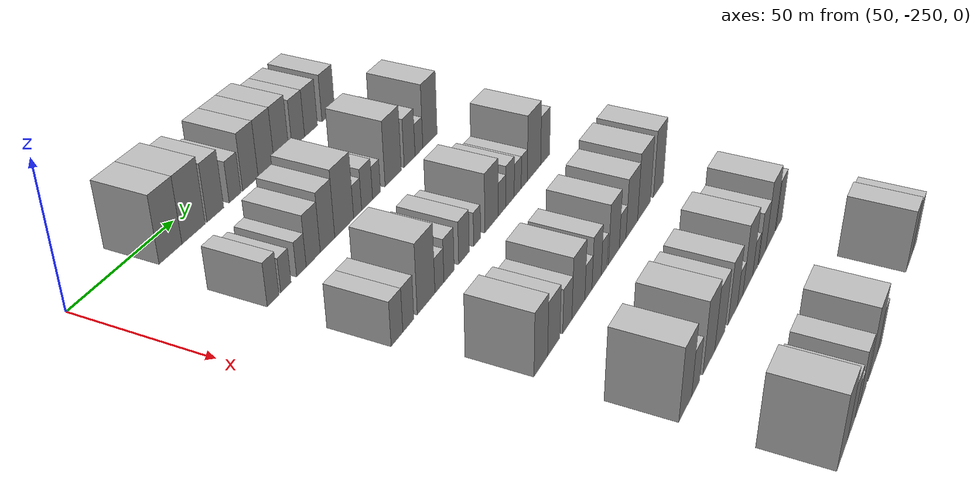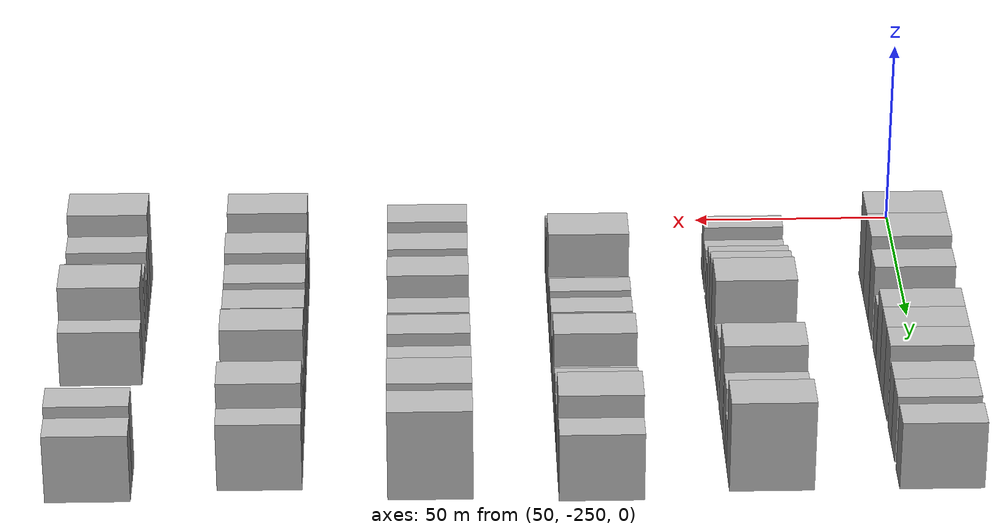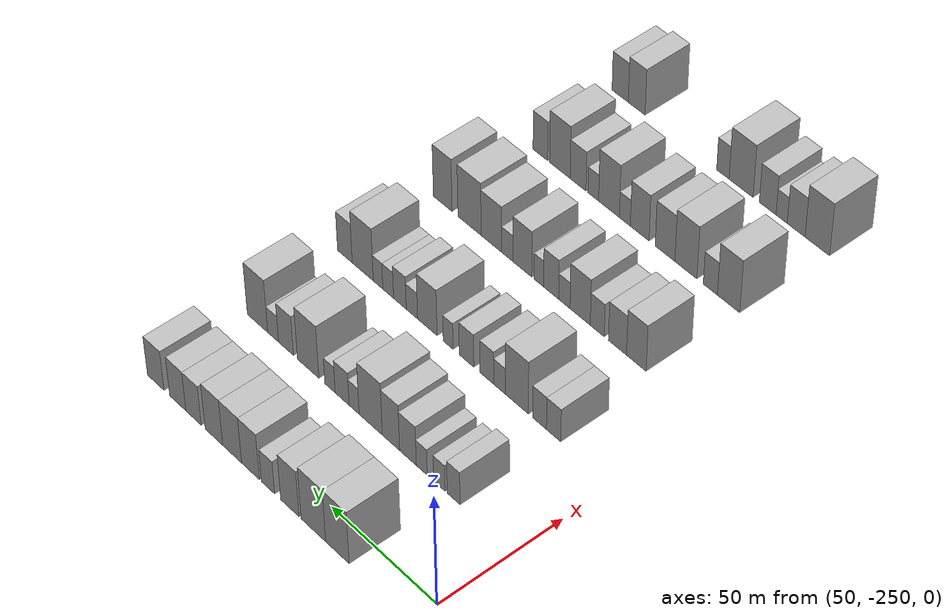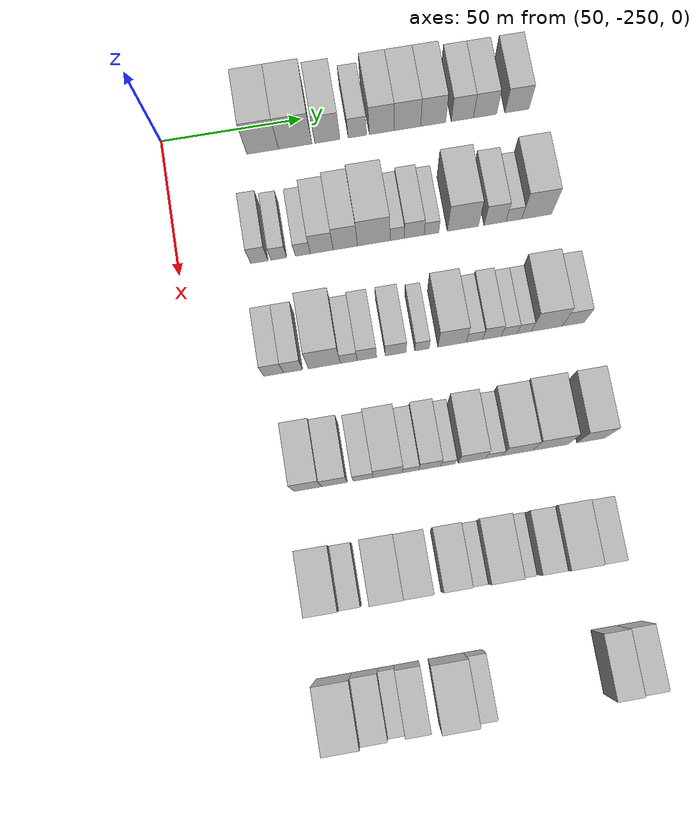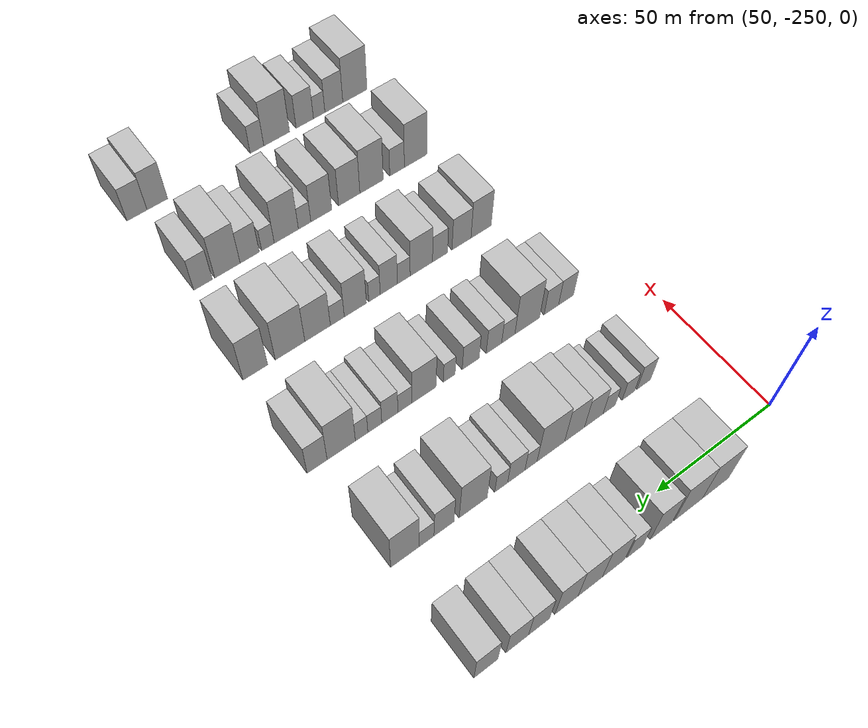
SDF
<sdf version="1.6">
 <world name="default">
  <model name="building_44">
   <static>1</static>
   <pose>50.0000 -215.1509 0 0.000000 0.000000 0.000000</pose>
   <link name="link">
    <pose>0 0 12.00 0 0 0</pose>
    <collision name="collision"><geometry><box><size>20.0000 11.2883 24.0000</size></box></geometry></collision>
    <visual name="visual">
     <cast_shadows>0</cast_shadows>
     <geometry><box><size>20.0000 11.2883 24.0000</size></box></geometry>
     <material>
      <script>
       <uri>model://HANNAS_wall/materials/scripts</uri>
       <uri>model://HANNAS_wall/materials/textures</uri>
       <name>vrc/HANNAS_wall</name>
      </script>
     </material>
    </visual>
   </link>
  </model>
  <model name="building_45">
   <static>1</static>
   <pose>50.0000 -203.5456 0 0.000000 0.000000 0.000000</pose>
   <link name="link">
    <pose>0 0 12.00 0 0 0</pose>
    <collision name="collision"><geometry><box><size>20.0000 11.9224 24.0000</size></box></geometry></collision>
    <visual name="visual">
     <cast_shadows>0</cast_shadows>
     <geometry><box><size>20.0000 11.9224 24.0000</size></box></geometry>
     <material>
      <script>
       <uri>model://HANNAS_wall/materials/scripts</uri>
       <uri>model://HANNAS_wall/materials/textures</uri>
       <name>vrc/HANNAS_wall</name>
      </script>
     </material>
    </visual>
   </link>
  </model>
  <model name="building_46">
   <static>1</static>
   <pose>50.0000 -192.0829 0 0.000000 0.000000 0.000000</pose>
   <link name="link">
    <pose>0 0 10.50 0 0 0</pose>
    <collision name="collision"><geometry><box><size>20.0000 9.0031 21.0000</size></box></geometry></collision>
    <visual name="visual">
     <cast_shadows>0</cast_shadows>
     <geometry><box><size>20.0000 9.0031 21.0000</size></box></geometry>
     <material>
      <script>
       <uri>model://HANNAS_wall/materials/scripts</uri>
       <uri>model://HANNAS_wall/materials/textures</uri>
       <name>vrc/HANNAS_wall</name>
      </script>
     </material>
    </visual>
   </link>
  </model>
  <model name="building_47">
   <static>1</static>
   <pose>50.0000 -181.3081 0 0.000000 0.000000 0.000000</pose>
   <link name="link">
    <pose>0 0 7.50 0 0 0</pose>
    <collision name="collision"><geometry><box><size>20.0000 6.5465 15.0000</size></box></geometry></collision>
    <visual name="visual">
     <cast_shadows>0</cast_shadows>
     <geometry><box><size>20.0000 6.5465 15.0000</size></box></geometry>
     <material>
      <script>
       <uri>model://HANNAS_wall/materials/scripts</uri>
       <uri>model://HANNAS_wall/materials/textures</uri>
       <name>vrc/HANNAS_wall</name>
      </script>
     </material>
    </visual>
   </link>
  </model>
  <model name="building_48">
   <static>1</static>
   <pose>50.0000 -172.5631 0 0.000000 0.000000 0.000000</pose>
   <link name="link">
    <pose>0 0 10.50 0 0 0</pose>
    <collision name="collision"><geometry><box><size>20.0000 8.9435 21.0000</size></box></geometry></collision>
    <visual name="visual">
     <cast_shadows>0</cast_shadows>
     <geometry><box><size>20.0000 8.9435 21.0000</size></box></geometry>
     <material>
      <script>
       <uri>model://HANNAS_wall/materials/scripts</uri>
       <uri>model://HANNAS_wall/materials/textures</uri>
       <name>vrc/HANNAS_wall</name>
      </script>
     </material>
    </visual>
   </link>
  </model>
  <model name="building_49">
   <static>1</static>
   <pose>50.0000 -163.3328 0 0.000000 0.000000 0.000000</pose>
   <link name="link">
    <pose>0 0 10.50 0 0 0</pose>
    <collision name="collision"><geometry><box><size>20.0000 9.5170 21.0000</size></box></geometry></collision>
    <visual name="visual">
     <cast_shadows>0</cast_shadows>
     <geometry><box><size>20.0000 9.5170 21.0000</size></box></geometry>
     <material>
      <script>
       <uri>model://HANNAS_wall/materials/scripts</uri>
       <uri>model://HANNAS_wall/materials/textures</uri>
       <name>vrc/HANNAS_wall</name>
      </script>
     </material>
    </visual>
   </link>
  </model>
  <model name="building_50">
   <static>1</static>
   <pose>50.0000 -154.0710 0 0.000000 0.000000 0.000000</pose>
   <link name="link">
    <pose>0 0 10.50 0 0 0</pose>
    <collision name="collision"><geometry><box><size>20.0000 9.0066 21.0000</size></box></geometry></collision>
    <visual name="visual">
     <cast_shadows>0</cast_shadows>
     <geometry><box><size>20.0000 9.0066 21.0000</size></box></geometry>
     <material>
      <script>
       <uri>model://HANNAS_wall/materials/scripts</uri>
       <uri>model://HANNAS_wall/materials/textures</uri>
       <name>vrc/HANNAS_wall</name>
      </script>
     </material>
    </visual>
   </link>
  </model>
  <model name="building_51">
   <static>1</static>
   <pose>50.0000 -143.5659 0 0.000000 0.000000 0.000000</pose>
   <link name="link">
    <pose>0 0 9.00 0 0 0</pose>
    <collision name="collision"><geometry><box><size>20.0000 8.0035 18.0000</size></box></geometry></collision>
    <visual name="visual">
     <cast_shadows>0</cast_shadows>
     <geometry><box><size>20.0000 8.0035 18.0000</size></box></geometry>
     <material>
      <script>
       <uri>model://HANNAS_wall/materials/scripts</uri>
       <uri>model://HANNAS_wall/materials/textures</uri>
       <name>vrc/HANNAS_wall</name>
      </script>
     </material>
    </visual>
   </link>
  </model>
  <model name="building_52">
   <static>1</static>
   <pose>50.0000 -135.3710 0 0.000000 0.000000 0.000000</pose>
   <link name="link">
    <pose>0 0 9.00 0 0 0</pose>
    <collision name="collision"><geometry><box><size>20.0000 8.3865 18.0000</size></box></geometry></collision>
    <visual name="visual">
     <cast_shadows>0</cast_shadows>
     <geometry><box><size>20.0000 8.3865 18.0000</size></box></geometry>
     <material>
      <script>
       <uri>model://HANNAS_wall/materials/scripts</uri>
       <uri>model://HANNAS_wall/materials/textures</uri>
       <name>vrc/HANNAS_wall</name>
      </script>
     </material>
    </visual>
   </link>
  </model>
  <model name="building_53">
   <static>1</static>
   <pose>50.0000 -123.8219 0 0.000000 0.000000 0.000000</pose>
   <link name="link">
    <pose>0 0 9.00 0 0 0</pose>
    <collision name="collision"><geometry><box><size>20.0000 8.7116 18.0000</size></box></geometry></collision>
    <visual name="visual">
     <cast_shadows>0</cast_shadows>
     <geometry><box><size>20.0000 8.7116 18.0000</size></box></geometry>
     <material>
      <script>
       <uri>model://HANNAS_wall/materials/scripts</uri>
       <uri>model://HANNAS_wall/materials/textures</uri>
       <name>vrc/HANNAS_wall</name>
      </script>
     </material>
    </visual>
   </link>
  </model>
  <model name="building_183">
   <static>1</static>
   <pose>90.0000 -222.1263 0 0.000000 0.000000 0.000000</pose>
   <link name="link">
    <pose>0 0 7.50 0 0 0</pose>
    <collision name="collision"><geometry><box><size>20.0000 6.0730 15.0000</size></box></geometry></collision>
    <visual name="visual">
     <cast_shadows>0</cast_shadows>
     <geometry><box><size>20.0000 6.0730 15.0000</size></box></geometry>
     <material>
      <script>
       <uri>model://HANNAS_wall/materials/scripts</uri>
       <uri>model://HANNAS_wall/materials/textures</uri>
       <name>vrc/HANNAS_wall</name>
      </script>
     </material>
    </visual>
   </link>
  </model>
  <model name="building_184">
   <static>1</static>
   <pose>90.0000 -215.3403 0 0.000000 0.000000 0.000000</pose>
   <link name="link">
    <pose>0 0 6.00 0 0 0</pose>
    <collision name="collision"><geometry><box><size>20.0000 5.4990 12.0000</size></box></geometry></collision>
    <visual name="visual">
     <cast_shadows>0</cast_shadows>
     <geometry><box><size>20.0000 5.4990 12.0000</size></box></geometry>
     <material>
      <script>
       <uri>model://HANNAS_wall/materials/scripts</uri>
       <uri>model://HANNAS_wall/materials/textures</uri>
       <name>vrc/HANNAS_wall</name>
      </script>
     </material>
    </visual>
   </link>
  </model>
  <model name="building_185">
   <static>1</static>
   <pose>90.0000 -206.9477 0 0.000000 0.000000 0.000000</pose>
   <link name="link">
    <pose>0 0 6.00 0 0 0</pose>
    <collision name="collision"><geometry><box><size>20.0000 5.2861 12.0000</size></box></geometry></collision>
    <visual name="visual">
     <cast_shadows>0</cast_shadows>
     <geometry><box><size>20.0000 5.2861 12.0000</size></box></geometry>
     <material>
      <script>
       <uri>model://HANNAS_wall/materials/scripts</uri>
       <uri>model://HANNAS_wall/materials/textures</uri>
       <name>vrc/HANNAS_wall</name>
      </script>
     </material>
    </visual>
   </link>
  </model>
  <model name="building_186">
   <static>1</static>
   <pose>90.0000 -200.3060 0 0.000000 0.000000 0.000000</pose>
   <link name="link">
    <pose>0 0 9.00 0 0 0</pose>
    <collision name="collision"><geometry><box><size>20.0000 7.9973 18.0000</size></box></geometry></collision>
    <visual name="visual">
     <cast_shadows>0</cast_shadows>
     <geometry><box><size>20.0000 7.9973 18.0000</size></box></geometry>
     <material>
      <script>
       <uri>model://HANNAS_wall/materials/scripts</uri>
       <uri>model://HANNAS_wall/materials/textures</uri>
       <name>vrc/HANNAS_wall</name>
      </script>
     </material>
    </visual>
   </link>
  </model>
  <model name="building_187">
   <static>1</static>
   <pose>90.0000 -192.0844 0 0.000000 0.000000 0.000000</pose>
   <link name="link">
    <pose>0 0 10.50 0 0 0</pose>
    <collision name="collision"><geometry><box><size>20.0000 8.4459 21.0000</size></box></geometry></collision>
    <visual name="visual">
     <cast_shadows>0</cast_shadows>
     <geometry><box><size>20.0000 8.4459 21.0000</size></box></geometry>
     <material>
      <script>
       <uri>model://HANNAS_wall/materials/scripts</uri>
       <uri>model://HANNAS_wall/materials/textures</uri>
       <name>vrc/HANNAS_wall</name>
      </script>
     </material>
    </visual>
   </link>
  </model>
  <model name="building_188">
   <static>1</static>
   <pose>90.0000 -182.1443 0 0.000000 0.000000 0.000000</pose>
   <link name="link">
    <pose>0 0 12.00 0 0 0</pose>
    <collision name="collision"><geometry><box><size>20.0000 11.4341 24.0000</size></box></geometry></collision>
    <visual name="visual">
     <cast_shadows>0</cast_shadows>
     <geometry><box><size>20.0000 11.4341 24.0000</size></box></geometry>
     <material>
      <script>
       <uri>model://HANNAS_wall/materials/scripts</uri>
       <uri>model://HANNAS_wall/materials/textures</uri>
       <name>vrc/HANNAS_wall</name>
      </script>
     </material>
    </visual>
   </link>
  </model>
  <model name="building_189">
   <static>1</static>
   <pose>90.0000 -173.9284 0 0.000000 0.000000 0.000000</pose>
   <link name="link">
    <pose>0 0 6.00 0 0 0</pose>
    <collision name="collision"><geometry><box><size>20.0000 4.9978 12.0000</size></box></geometry></collision>
    <visual name="visual">
     <cast_shadows>0</cast_shadows>
     <geometry><box><size>20.0000 4.9978 12.0000</size></box></geometry>
     <material>
      <script>
       <uri>model://HANNAS_wall/materials/scripts</uri>
       <uri>model://HANNAS_wall/materials/textures</uri>
       <name>vrc/HANNAS_wall</name>
      </script>
     </material>
    </visual>
   </link>
  </model>
  <model name="building_190">
   <static>1</static>
   <pose>90.0000 -167.9443 0 0.000000 0.000000 0.000000</pose>
   <link name="link">
    <pose>0 0 7.50 0 0 0</pose>
    <collision name="collision"><geometry><box><size>20.0000 6.9704 15.0000</size></box></geometry></collision>
    <visual name="visual">
     <cast_shadows>0</cast_shadows>
     <geometry><box><size>20.0000 6.9704 15.0000</size></box></geometry>
     <material>
      <script>
       <uri>model://HANNAS_wall/materials/scripts</uri>
       <uri>model://HANNAS_wall/materials/textures</uri>
       <name>vrc/HANNAS_wall</name>
      </script>
     </material>
    </visual>
   </link>
  </model>
  <model name="building_191">
   <static>1</static>
   <pose>90.0000 -161.8737 0 0.000000 0.000000 0.000000</pose>
   <link name="link">
    <pose>0 0 6.00 0 0 0</pose>
    <collision name="collision"><geometry><box><size>20.0000 5.1708 12.0000</size></box></geometry></collision>
    <visual name="visual">
     <cast_shadows>0</cast_shadows>
     <geometry><box><size>20.0000 5.1708 12.0000</size></box></geometry>
     <material>
      <script>
       <uri>model://HANNAS_wall/materials/scripts</uri>
       <uri>model://HANNAS_wall/materials/textures</uri>
       <name>vrc/HANNAS_wall</name>
      </script>
     </material>
    </visual>
   </link>
  </model>
  <model name="building_192">
   <static>1</static>
   <pose>90.0000 -150.8051 0 0.000000 0.000000 0.000000</pose>
   <link name="link">
    <pose>0 0 12.00 0 0 0</pose>
    <collision name="collision"><geometry><box><size>20.0000 10.9663 24.0000</size></box></geometry></collision>
    <visual name="visual">
     <cast_shadows>0</cast_shadows>
     <geometry><box><size>20.0000 10.9663 24.0000</size></box></geometry>
     <material>
      <script>
       <uri>model://HANNAS_wall/materials/scripts</uri>
       <uri>model://HANNAS_wall/materials/textures</uri>
       <name>vrc/HANNAS_wall</name>
      </script>
     </material>
    </visual>
   </link>
  </model>
  <model name="building_193">
   <static>1</static>
   <pose>90.0000 -139.4650 0 0.000000 0.000000 0.000000</pose>
   <link name="link">
    <pose>0 0 9.00 0 0 0</pose>
    <collision name="collision"><geometry><box><size>20.0000 7.7139 18.0000</size></box></geometry></collision>
    <visual name="visual">
     <cast_shadows>0</cast_shadows>
     <geometry><box><size>20.0000 7.7139 18.0000</size></box></geometry>
     <material>
      <script>
       <uri>model://HANNAS_wall/materials/scripts</uri>
       <uri>model://HANNAS_wall/materials/textures</uri>
       <name>vrc/HANNAS_wall</name>
      </script>
     </material>
    </visual>
   </link>
  </model>
  <model name="building_194">
   <static>1</static>
   <pose>90.0000 -132.8114 0 0.000000 0.000000 0.000000</pose>
   <link name="link">
    <pose>0 0 6.00 0 0 0</pose>
    <collision name="collision"><geometry><box><size>20.0000 5.5934 12.0000</size></box></geometry></collision>
    <visual name="visual">
     <cast_shadows>0</cast_shadows>
     <geometry><box><size>20.0000 5.5934 12.0000</size></box></geometry>
     <material>
      <script>
       <uri>model://HANNAS_wall/materials/scripts</uri>
       <uri>model://HANNAS_wall/materials/textures</uri>
       <name>vrc/HANNAS_wall</name>
      </script>
     </material>
    </visual>
   </link>
  </model>
  <model name="building_195">
   <static>1</static>
   <pose>90.0000 -124.7039 0 0.000000 0.000000 0.000000</pose>
   <link name="link">
    <pose>0 0 12.00 0 0 0</pose>
    <collision name="collision"><geometry><box><size>20.0000 10.6215 24.0000</size></box></geometry></collision>
    <visual name="visual">
     <cast_shadows>0</cast_shadows>
     <geometry><box><size>20.0000 10.6215 24.0000</size></box></geometry>
     <material>
      <script>
       <uri>model://HANNAS_wall/materials/scripts</uri>
       <uri>model://HANNAS_wall/materials/textures</uri>
       <name>vrc/HANNAS_wall</name>
      </script>
     </material>
    </visual>
   </link>
  </model>
  <model name="building_319">
   <static>1</static>
   <pose>130.0000 -223.0644 0 0.000000 0.000000 0.000000</pose>
   <link name="link">
    <pose>0 0 7.50 0 0 0</pose>
    <collision name="collision"><geometry><box><size>20.0000 6.7323 15.0000</size></box></geometry></collision>
    <visual name="visual">
     <cast_shadows>0</cast_shadows>
     <geometry><box><size>20.0000 6.7323 15.0000</size></box></geometry>
     <material>
      <script>
       <uri>model://HANNAS_wall/materials/scripts</uri>
       <uri>model://HANNAS_wall/materials/textures</uri>
       <name>vrc/HANNAS_wall</name>
      </script>
     </material>
    </visual>
   </link>
  </model>
  <model name="building_320">
   <static>1</static>
   <pose>130.0000 -216.4493 0 0.000000 0.000000 0.000000</pose>
   <link name="link">
    <pose>0 0 7.50 0 0 0</pose>
    <collision name="collision"><geometry><box><size>20.0000 6.4980 15.0000</size></box></geometry></collision>
    <visual name="visual">
     <cast_shadows>0</cast_shadows>
     <geometry><box><size>20.0000 6.4980 15.0000</size></box></geometry>
     <material>
      <script>
       <uri>model://HANNAS_wall/materials/scripts</uri>
       <uri>model://HANNAS_wall/materials/textures</uri>
       <name>vrc/HANNAS_wall</name>
      </script>
     </material>
    </visual>
   </link>
  </model>
  <model name="building_321">
   <static>1</static>
   <pose>130.0000 -205.7435 0 0.000000 0.000000 0.000000</pose>
   <link name="link">
    <pose>0 0 12.00 0 0 0</pose>
    <collision name="collision"><geometry><box><size>20.0000 10.9136 24.0000</size></box></geometry></collision>
    <visual name="visual">
     <cast_shadows>0</cast_shadows>
     <geometry><box><size>20.0000 10.9136 24.0000</size></box></geometry>
     <material>
      <script>
       <uri>model://HANNAS_wall/materials/scripts</uri>
       <uri>model://HANNAS_wall/materials/textures</uri>
       <name>vrc/HANNAS_wall</name>
      </script>
     </material>
    </visual>
   </link>
  </model>
  <model name="building_322">
   <static>1</static>
   <pose>130.0000 -197.4213 0 0.000000 0.000000 0.000000</pose>
   <link name="link">
    <pose>0 0 6.00 0 0 0</pose>
    <collision name="collision"><geometry><box><size>20.0000 5.7308 12.0000</size></box></geometry></collision>
    <visual name="visual">
     <cast_shadows>0</cast_shadows>
     <geometry><box><size>20.0000 5.7308 12.0000</size></box></geometry>
     <material>
      <script>
       <uri>model://HANNAS_wall/materials/scripts</uri>
       <uri>model://HANNAS_wall/materials/textures</uri>
       <name>vrc/HANNAS_wall</name>
      </script>
     </material>
    </visual>
   </link>
  </model>
  <model name="building_323">
   <static>1</static>
   <pose>130.0000 -191.2221 0 0.000000 0.000000 0.000000</pose>
   <link name="link">
    <pose>0 0 7.50 0 0 0</pose>
    <collision name="collision"><geometry><box><size>20.0000 6.6677 15.0000</size></box></geometry></collision>
    <visual name="visual">
     <cast_shadows>0</cast_shadows>
     <geometry><box><size>20.0000 6.6677 15.0000</size></box></geometry>
     <material>
      <script>
       <uri>model://HANNAS_wall/materials/scripts</uri>
       <uri>model://HANNAS_wall/materials/textures</uri>
       <name>vrc/HANNAS_wall</name>
      </script>
     </material>
    </visual>
   </link>
  </model>
  <model name="building_324">
   <static>1</static>
   <pose>130.0000 -181.3081 0 0.000000 0.000000 0.000000</pose>
   <link name="link">
    <pose>0 0 7.50 0 0 0</pose>
    <collision name="collision"><geometry><box><size>20.0000 7.1602 15.0000</size></box></geometry></collision>
    <visual name="visual">
     <cast_shadows>0</cast_shadows>
     <geometry><box><size>20.0000 7.1602 15.0000</size></box></geometry>
     <material>
      <script>
       <uri>model://HANNAS_wall/materials/scripts</uri>
       <uri>model://HANNAS_wall/materials/textures</uri>
       <name>vrc/HANNAS_wall</name>
      </script>
     </material>
    </visual>
   </link>
  </model>
  <model name="building_325">
   <static>1</static>
   <pose>130.0000 -172.2784 0 0.000000 0.000000 0.000000</pose>
   <link name="link">
    <pose>0 0 6.00 0 0 0</pose>
    <collision name="collision"><geometry><box><size>20.0000 4.8992 12.0000</size></box></geometry></collision>
    <visual name="visual">
     <cast_shadows>0</cast_shadows>
     <geometry><box><size>20.0000 4.8992 12.0000</size></box></geometry>
     <material>
      <script>
       <uri>model://HANNAS_wall/materials/scripts</uri>
       <uri>model://HANNAS_wall/materials/textures</uri>
       <name>vrc/HANNAS_wall</name>
      </script>
     </material>
    </visual>
   </link>
  </model>
  <model name="building_326">
   <static>1</static>
   <pose>130.0000 -161.9482 0 0.000000 0.000000 0.000000</pose>
   <link name="link">
    <pose>0 0 10.50 0 0 0</pose>
    <collision name="collision"><geometry><box><size>20.0000 9.7613 21.0000</size></box></geometry></collision>
    <visual name="visual">
     <cast_shadows>0</cast_shadows>
     <geometry><box><size>20.0000 9.7613 21.0000</size></box></geometry>
     <material>
      <script>
       <uri>model://HANNAS_wall/materials/scripts</uri>
       <uri>model://HANNAS_wall/materials/textures</uri>
       <name>vrc/HANNAS_wall</name>
      </script>
     </material>
    </visual>
   </link>
  </model>
  <model name="building_327">
   <static>1</static>
   <pose>130.0000 -154.2139 0 0.000000 0.000000 0.000000</pose>
   <link name="link">
    <pose>0 0 6.00 0 0 0</pose>
    <collision name="collision"><geometry><box><size>20.0000 5.7072 12.0000</size></box></geometry></collision>
    <visual name="visual">
     <cast_shadows>0</cast_shadows>
     <geometry><box><size>20.0000 5.7072 12.0000</size></box></geometry>
     <material>
      <script>
       <uri>model://HANNAS_wall/materials/scripts</uri>
       <uri>model://HANNAS_wall/materials/textures</uri>
       <name>vrc/HANNAS_wall</name>
      </script>
     </material>
    </visual>
   </link>
  </model>
  <model name="building_328">
   <static>1</static>
   <pose>130.0000 -148.1591 0 0.000000 0.000000 0.000000</pose>
   <link name="link">
    <pose>0 0 7.50 0 0 0</pose>
    <collision name="collision"><geometry><box><size>20.0000 6.4026 15.0000</size></box></geometry></collision>
    <visual name="visual">
     <cast_shadows>0</cast_shadows>
     <geometry><box><size>20.0000 6.4026 15.0000</size></box></geometry>
     <material>
      <script>
       <uri>model://HANNAS_wall/materials/scripts</uri>
       <uri>model://HANNAS_wall/materials/textures</uri>
       <name>vrc/HANNAS_wall</name>
      </script>
     </material>
    </visual>
   </link>
  </model>
  <model name="building_329">
   <static>1</static>
   <pose>130.0000 -142.2230 0 0.000000 0.000000 0.000000</pose>
   <link name="link">
    <pose>0 0 6.00 0 0 0</pose>
    <collision name="collision"><geometry><box><size>20.0000 5.4696 12.0000</size></box></geometry></collision>
    <visual name="visual">
     <cast_shadows>0</cast_shadows>
     <geometry><box><size>20.0000 5.4696 12.0000</size></box></geometry>
     <material>
      <script>
       <uri>model://HANNAS_wall/materials/scripts</uri>
       <uri>model://HANNAS_wall/materials/textures</uri>
       <name>vrc/HANNAS_wall</name>
      </script>
     </material>
    </visual>
   </link>
  </model>
  <model name="building_330">
   <static>1</static>
   <pose>130.0000 -137.0396 0 0.000000 0.000000 0.000000</pose>
   <link name="link">
    <pose>0 0 6.00 0 0 0</pose>
    <collision name="collision"><geometry><box><size>20.0000 4.8972 12.0000</size></box></geometry></collision>
    <visual name="visual">
     <cast_shadows>0</cast_shadows>
     <geometry><box><size>20.0000 4.8972 12.0000</size></box></geometry>
     <material>
      <script>
       <uri>model://HANNAS_wall/materials/scripts</uri>
       <uri>model://HANNAS_wall/materials/textures</uri>
       <name>vrc/HANNAS_wall</name>
      </script>
     </material>
    </visual>
   </link>
  </model>
  <model name="building_331">
   <static>1</static>
   <pose>130.0000 -129.1559 0 0.000000 0.000000 0.000000</pose>
   <link name="link">
    <pose>0 0 12.00 0 0 0</pose>
    <collision name="collision"><geometry><box><size>20.0000 10.8701 24.0000</size></box></geometry></collision>
    <visual name="visual">
     <cast_shadows>0</cast_shadows>
     <geometry><box><size>20.0000 10.8701 24.0000</size></box></geometry>
     <material>
      <script>
       <uri>model://HANNAS_wall/materials/scripts</uri>
       <uri>model://HANNAS_wall/materials/textures</uri>
       <name>vrc/HANNAS_wall</name>
      </script>
     </material>
    </visual>
   </link>
  </model>
  <model name="building_332">
   <static>1</static>
   <pose>130.0000 -119.9130 0 0.000000 0.000000 0.000000</pose>
   <link name="link">
    <pose>0 0 9.00 0 0 0</pose>
    <collision name="collision"><geometry><box><size>20.0000 7.6157 18.0000</size></box></geometry></collision>
    <visual name="visual">
     <cast_shadows>0</cast_shadows>
     <geometry><box><size>20.0000 7.6157 18.0000</size></box></geometry>
     <material>
      <script>
       <uri>model://HANNAS_wall/materials/scripts</uri>
       <uri>model://HANNAS_wall/materials/textures</uri>
       <name>vrc/HANNAS_wall</name>
      </script>
     </material>
    </visual>
   </link>
  </model>
  <model name="building_457">
   <static>1</static>
   <pose>170.0000 -217.5515 0 0.000000 0.000000 0.000000</pose>
   <link name="link">
    <pose>0 0 10.50 0 0 0</pose>
    <collision name="collision"><geometry><box><size>20.0000 9.1840 21.0000</size></box></geometry></collision>
    <visual name="visual">
     <cast_shadows>0</cast_shadows>
     <geometry><box><size>20.0000 9.1840 21.0000</size></box></geometry>
     <material>
      <script>
       <uri>model://HANNAS_wall/materials/scripts</uri>
       <uri>model://HANNAS_wall/materials/textures</uri>
       <name>vrc/HANNAS_wall</name>
      </script>
     </material>
    </visual>
   </link>
  </model>
  <model name="building_458">
   <static>1</static>
   <pose>170.0000 -208.6763 0 0.000000 0.000000 0.000000</pose>
   <link name="link">
    <pose>0 0 9.00 0 0 0</pose>
    <collision name="collision"><geometry><box><size>20.0000 8.5664 18.0000</size></box></geometry></collision>
    <visual name="visual">
     <cast_shadows>0</cast_shadows>
     <geometry><box><size>20.0000 8.5664 18.0000</size></box></geometry>
     <material>
      <script>
       <uri>model://HANNAS_wall/materials/scripts</uri>
       <uri>model://HANNAS_wall/materials/textures</uri>
       <name>vrc/HANNAS_wall</name>
      </script>
     </material>
    </visual>
   </link>
  </model>
  <model name="building_459">
   <static>1</static>
   <pose>170.0000 -199.0518 0 0.000000 0.000000 0.000000</pose>
   <link name="link">
    <pose>0 0 7.50 0 0 0</pose>
    <collision name="collision"><geometry><box><size>20.0000 6.6826 15.0000</size></box></geometry></collision>
    <visual name="visual">
     <cast_shadows>0</cast_shadows>
     <geometry><box><size>20.0000 6.6826 15.0000</size></box></geometry>
     <material>
      <script>
       <uri>model://HANNAS_wall/materials/scripts</uri>
       <uri>model://HANNAS_wall/materials/textures</uri>
       <name>vrc/HANNAS_wall</name>
      </script>
     </material>
    </visual>
   </link>
  </model>
  <model name="building_460">
   <static>1</static>
   <pose>170.0000 -190.8267 0 0.000000 0.000000 0.000000</pose>
   <link name="link">
    <pose>0 0 10.50 0 0 0</pose>
    <collision name="collision"><geometry><box><size>20.0000 9.7676 21.0000</size></box></geometry></collision>
    <visual name="visual">
     <cast_shadows>0</cast_shadows>
     <geometry><box><size>20.0000 9.7676 21.0000</size></box></geometry>
     <material>
      <script>
       <uri>model://HANNAS_wall/materials/scripts</uri>
       <uri>model://HANNAS_wall/materials/textures</uri>
       <name>vrc/HANNAS_wall</name>
      </script>
     </material>
    </visual>
   </link>
  </model>
  <model name="building_461">
   <static>1</static>
   <pose>170.0000 -183.1782 0 0.000000 0.000000 0.000000</pose>
   <link name="link">
    <pose>0 0 6.00 0 0 0</pose>
    <collision name="collision"><geometry><box><size>20.0000 5.5294 12.0000</size></box></geometry></collision>
    <visual name="visual">
     <cast_shadows>0</cast_shadows>
     <geometry><box><size>20.0000 5.5294 12.0000</size></box></geometry>
     <material>
      <script>
       <uri>model://HANNAS_wall/materials/scripts</uri>
       <uri>model://HANNAS_wall/materials/textures</uri>
       <name>vrc/HANNAS_wall</name>
      </script>
     </material>
    </visual>
   </link>
  </model>
  <model name="building_462">
   <static>1</static>
   <pose>170.0000 -176.7500 0 0.000000 0.000000 0.000000</pose>
   <link name="link">
    <pose>0 0 9.00 0 0 0</pose>
    <collision name="collision"><geometry><box><size>20.0000 7.3270 18.0000</size></box></geometry></collision>
    <visual name="visual">
     <cast_shadows>0</cast_shadows>
     <geometry><box><size>20.0000 7.3270 18.0000</size></box></geometry>
     <material>
      <script>
       <uri>model://HANNAS_wall/materials/scripts</uri>
       <uri>model://HANNAS_wall/materials/textures</uri>
       <name>vrc/HANNAS_wall</name>
      </script>
     </material>
    </visual>
   </link>
  </model>
  <model name="building_463">
   <static>1</static>
   <pose>170.0000 -170.6645 0 0.000000 0.000000 0.000000</pose>
   <link name="link">
    <pose>0 0 6.00 0 0 0</pose>
    <collision name="collision"><geometry><box><size>20.0000 4.8441 12.0000</size></box></geometry></collision>
    <visual name="visual">
     <cast_shadows>0</cast_shadows>
     <geometry><box><size>20.0000 4.8441 12.0000</size></box></geometry>
     <material>
      <script>
       <uri>model://HANNAS_wall/materials/scripts</uri>
       <uri>model://HANNAS_wall/materials/textures</uri>
       <name>vrc/HANNAS_wall</name>
      </script>
     </material>
    </visual>
   </link>
  </model>
  <model name="building_464">
   <static>1</static>
   <pose>170.0000 -162.6236 0 0.000000 0.000000 0.000000</pose>
   <link name="link">
    <pose>0 0 10.50 0 0 0</pose>
    <collision name="collision"><geometry><box><size>20.0000 9.2377 21.0000</size></box></geometry></collision>
    <visual name="visual">
     <cast_shadows>0</cast_shadows>
     <geometry><box><size>20.0000 9.2377 21.0000</size></box></geometry>
     <material>
      <script>
       <uri>model://HANNAS_wall/materials/scripts</uri>
       <uri>model://HANNAS_wall/materials/textures</uri>
       <name>vrc/HANNAS_wall</name>
      </script>
     </material>
    </visual>
   </link>
  </model>
  <model name="building_465">
   <static>1</static>
   <pose>170.0000 -155.1461 0 0.000000 0.000000 0.000000</pose>
   <link name="link">
    <pose>0 0 6.00 0 0 0</pose>
    <collision name="collision"><geometry><box><size>20.0000 5.7173 12.0000</size></box></geometry></collision>
    <visual name="visual">
     <cast_shadows>0</cast_shadows>
     <geometry><box><size>20.0000 5.7173 12.0000</size></box></geometry>
     <material>
      <script>
       <uri>model://HANNAS_wall/materials/scripts</uri>
       <uri>model://HANNAS_wall/materials/textures</uri>
       <name>vrc/HANNAS_wall</name>
      </script>
     </material>
    </visual>
   </link>
  </model>
  <model name="building_466">
   <static>1</static>
   <pose>170.0000 -147.0947 0 0.000000 0.000000 0.000000</pose>
   <link name="link">
    <pose>0 0 10.50 0 0 0</pose>
    <collision name="collision"><geometry><box><size>20.0000 10.3855 21.0000</size></box></geometry></collision>
    <visual name="visual">
     <cast_shadows>0</cast_shadows>
     <geometry><box><size>20.0000 10.3855 21.0000</size></box></geometry>
     <material>
      <script>
       <uri>model://HANNAS_wall/materials/scripts</uri>
       <uri>model://HANNAS_wall/materials/textures</uri>
       <name>vrc/HANNAS_wall</name>
      </script>
     </material>
    </visual>
   </link>
  </model>
  <model name="building_467">
   <static>1</static>
   <pose>170.0000 -135.9889 0 0.000000 0.000000 0.000000</pose>
   <link name="link">
    <pose>0 0 12.00 0 0 0</pose>
    <collision name="collision"><geometry><box><size>20.0000 11.8263 24.0000</size></box></geometry></collision>
    <visual name="visual">
     <cast_shadows>0</cast_shadows>
     <geometry><box><size>20.0000 11.8263 24.0000</size></box></geometry>
     <material>
      <script>
       <uri>model://HANNAS_wall/materials/scripts</uri>
       <uri>model://HANNAS_wall/materials/textures</uri>
       <name>vrc/HANNAS_wall</name>
      </script>
     </material>
    </visual>
   </link>
  </model>
  <model name="building_468">
   <static>1</static>
   <pose>170.0000 -122.2620 0 0.000000 0.000000 0.000000</pose>
   <link name="link">
    <pose>0 0 12.00 0 0 0</pose>
    <collision name="collision"><geometry><box><size>20.0000 9.6274 24.0000</size></box></geometry></collision>
    <visual name="visual">
     <cast_shadows>0</cast_shadows>
     <geometry><box><size>20.0000 9.6274 24.0000</size></box></geometry>
     <material>
      <script>
       <uri>model://HANNAS_wall/materials/scripts</uri>
       <uri>model://HANNAS_wall/materials/textures</uri>
       <name>vrc/HANNAS_wall</name>
      </script>
     </material>
    </visual>
   </link>
  </model>
  <model name="building_590">
   <static>1</static>
   <pose>210.0000 -218.0966 0 0.000000 0.000000 0.000000</pose>
   <link name="link">
    <pose>0 0 12.00 0 0 0</pose>
    <collision name="collision"><geometry><box><size>20.0000 10.4303 24.0000</size></box></geometry></collision>
    <visual name="visual">
     <cast_shadows>0</cast_shadows>
     <geometry><box><size>20.0000 10.4303 24.0000</size></box></geometry>
     <material>
      <script>
       <uri>model://HANNAS_wall/materials/scripts</uri>
       <uri>model://HANNAS_wall/materials/textures</uri>
       <name>vrc/HANNAS_wall</name>
      </script>
     </material>
    </visual>
   </link>
  </model>
  <model name="building_591">
   <static>1</static>
   <pose>210.0000 -209.5448 0 0.000000 0.000000 0.000000</pose>
   <link name="link">
    <pose>0 0 7.50 0 0 0</pose>
    <collision name="collision"><geometry><box><size>20.0000 6.6734 15.0000</size></box></geometry></collision>
    <visual name="visual">
     <cast_shadows>0</cast_shadows>
     <geometry><box><size>20.0000 6.6734 15.0000</size></box></geometry>
     <material>
      <script>
       <uri>model://HANNAS_wall/materials/scripts</uri>
       <uri>model://HANNAS_wall/materials/textures</uri>
       <name>vrc/HANNAS_wall</name>
      </script>
     </material>
    </visual>
   </link>
  </model>
  <model name="building_592">
   <static>1</static>
   <pose>210.0000 -197.9469 0 0.000000 0.000000 0.000000</pose>
   <link name="link">
    <pose>0 0 12.00 0 0 0</pose>
    <collision name="collision"><geometry><box><size>20.0000 10.5224 24.0000</size></box></geometry></collision>
    <visual name="visual">
     <cast_shadows>0</cast_shadows>
     <geometry><box><size>20.0000 10.5224 24.0000</size></box></geometry>
     <material>
      <script>
       <uri>model://HANNAS_wall/materials/scripts</uri>
       <uri>model://HANNAS_wall/materials/textures</uri>
       <name>vrc/HANNAS_wall</name>
      </script>
     </material>
    </visual>
   </link>
  </model>
  <model name="building_593">
   <static>1</static>
   <pose>210.0000 -187.9480 0 0.000000 0.000000 0.000000</pose>
   <link name="link">
    <pose>0 0 10.50 0 0 0</pose>
    <collision name="collision"><geometry><box><size>20.0000 9.4754 21.0000</size></box></geometry></collision>
    <visual name="visual">
     <cast_shadows>0</cast_shadows>
     <geometry><box><size>20.0000 9.4754 21.0000</size></box></geometry>
     <material>
      <script>
       <uri>model://HANNAS_wall/materials/scripts</uri>
       <uri>model://HANNAS_wall/materials/textures</uri>
       <name>vrc/HANNAS_wall</name>
      </script>
     </material>
    </visual>
   </link>
  </model>
  <model name="building_594">
   <static>1</static>
   <pose>210.0000 -175.6614 0 0.000000 0.000000 0.000000</pose>
   <link name="link">
    <pose>0 0 10.50 0 0 0</pose>
    <collision name="collision"><geometry><box><size>20.0000 9.0977 21.0000</size></box></geometry></collision>
    <visual name="visual">
     <cast_shadows>0</cast_shadows>
     <geometry><box><size>20.0000 9.0977 21.0000</size></box></geometry>
     <material>
      <script>
       <uri>model://HANNAS_wall/materials/scripts</uri>
       <uri>model://HANNAS_wall/materials/textures</uri>
       <name>vrc/HANNAS_wall</name>
      </script>
     </material>
    </visual>
   </link>
  </model>
  <model name="building_595">
   <static>1</static>
   <pose>210.0000 -168.4188 0 0.000000 0.000000 0.000000</pose>
   <link name="link">
    <pose>0 0 6.00 0 0 0</pose>
    <collision name="collision"><geometry><box><size>20.0000 5.3875 12.0000</size></box></geometry></collision>
    <visual name="visual">
     <cast_shadows>0</cast_shadows>
     <geometry><box><size>20.0000 5.3875 12.0000</size></box></geometry>
     <material>
      <script>
       <uri>model://HANNAS_wall/materials/scripts</uri>
       <uri>model://HANNAS_wall/materials/textures</uri>
       <name>vrc/HANNAS_wall</name>
      </script>
     </material>
    </visual>
   </link>
  </model>
  <model name="building_596">
   <static>1</static>
   <pose>210.0000 -160.5900 0 0.000000 0.000000 0.000000</pose>
   <link name="link">
    <pose>0 0 12.00 0 0 0</pose>
    <collision name="collision"><geometry><box><size>20.0000 10.2701 24.0000</size></box></geometry></collision>
    <visual name="visual">
     <cast_shadows>0</cast_shadows>
     <geometry><box><size>20.0000 10.2701 24.0000</size></box></geometry>
     <material>
      <script>
       <uri>model://HANNAS_wall/materials/scripts</uri>
       <uri>model://HANNAS_wall/materials/textures</uri>
       <name>vrc/HANNAS_wall</name>
      </script>
     </material>
    </visual>
   </link>
  </model>
  <model name="building_597">
   <static>1</static>
   <pose>210.0000 -152.8083 0 0.000000 0.000000 0.000000</pose>
   <link name="link">
    <pose>0 0 6.00 0 0 0</pose>
    <collision name="collision"><geometry><box><size>20.0000 5.2934 12.0000</size></box></geometry></collision>
    <visual name="visual">
     <cast_shadows>0</cast_shadows>
     <geometry><box><size>20.0000 5.2934 12.0000</size></box></geometry>
     <material>
      <script>
       <uri>model://HANNAS_wall/materials/scripts</uri>
       <uri>model://HANNAS_wall/materials/textures</uri>
       <name>vrc/HANNAS_wall</name>
      </script>
     </material>
    </visual>
   </link>
  </model>
  <model name="building_598">
   <static>1</static>
   <pose>210.0000 -145.1901 0 0.000000 0.000000 0.000000</pose>
   <link name="link">
    <pose>0 0 9.00 0 0 0</pose>
    <collision name="collision"><geometry><box><size>20.0000 7.9430 18.0000</size></box></geometry></collision>
    <visual name="visual">
     <cast_shadows>0</cast_shadows>
     <geometry><box><size>20.0000 7.9430 18.0000</size></box></geometry>
     <material>
      <script>
       <uri>model://HANNAS_wall/materials/scripts</uri>
       <uri>model://HANNAS_wall/materials/textures</uri>
       <name>vrc/HANNAS_wall</name>
      </script>
     </material>
    </visual>
   </link>
  </model>
  <model name="building_599">
   <static>1</static>
   <pose>210.0000 -136.0302 0 0.000000 0.000000 0.000000</pose>
   <link name="link">
    <pose>0 0 12.00 0 0 0</pose>
    <collision name="collision"><geometry><box><size>20.0000 10.3767 24.0000</size></box></geometry></collision>
    <visual name="visual">
     <cast_shadows>0</cast_shadows>
     <geometry><box><size>20.0000 10.3767 24.0000</size></box></geometry>
     <material>
      <script>
       <uri>model://HANNAS_wall/materials/scripts</uri>
       <uri>model://HANNAS_wall/materials/textures</uri>
       <name>vrc/HANNAS_wall</name>
      </script>
     </material>
    </visual>
   </link>
  </model>
  <model name="building_600">
   <static>1</static>
   <pose>210.0000 -126.0972 0 0.000000 0.000000 0.000000</pose>
   <link name="link">
    <pose>0 0 9.00 0 0 0</pose>
    <collision name="collision"><geometry><box><size>20.0000 7.4893 18.0000</size></box></geometry></collision>
    <visual name="visual">
     <cast_shadows>0</cast_shadows>
     <geometry><box><size>20.0000 7.4893 18.0000</size></box></geometry>
     <material>
      <script>
       <uri>model://HANNAS_wall/materials/scripts</uri>
       <uri>model://HANNAS_wall/materials/textures</uri>
       <name>vrc/HANNAS_wall</name>
      </script>
     </material>
    </visual>
   </link>
  </model>
  <model name="building_736">
   <static>1</static>
   <pose>250.0000 -218.4795 0 0.000000 0.000000 0.000000</pose>
   <link name="link">
    <pose>0 0 12.00 0 0 0</pose>
    <collision name="collision"><geometry><box><size>20.0000 11.4536 24.0000</size></box></geometry></collision>
    <visual name="visual">
     <cast_shadows>0</cast_shadows>
     <geometry><box><size>20.0000 11.4536 24.0000</size></box></geometry>
     <material>
      <script>
       <uri>model://HANNAS_wall/materials/scripts</uri>
       <uri>model://HANNAS_wall/materials/textures</uri>
       <name>vrc/HANNAS_wall</name>
      </script>
     </material>
    </visual>
   </link>
  </model>
  <model name="building_737">
   <static>1</static>
   <pose>250.0000 -208.5644 0 0.000000 0.000000 0.000000</pose>
   <link name="link">
    <pose>0 0 9.00 0 0 0</pose>
    <collision name="collision"><geometry><box><size>20.0000 8.3767 18.0000</size></box></geometry></collision>
    <visual name="visual">
     <cast_shadows>0</cast_shadows>
     <geometry><box><size>20.0000 8.3767 18.0000</size></box></geometry>
     <material>
      <script>
       <uri>model://HANNAS_wall/materials/scripts</uri>
       <uri>model://HANNAS_wall/materials/textures</uri>
       <name>vrc/HANNAS_wall</name>
      </script>
     </material>
    </visual>
   </link>
  </model>
  <model name="building_738">
   <static>1</static>
   <pose>250.0000 -201.7191 0 0.000000 0.000000 0.000000</pose>
   <link name="link">
    <pose>0 0 6.00 0 0 0</pose>
    <collision name="collision"><geometry><box><size>20.0000 5.3139 12.0000</size></box></geometry></collision>
    <visual name="visual">
     <cast_shadows>0</cast_shadows>
     <geometry><box><size>20.0000 5.3139 12.0000</size></box></geometry>
     <material>
      <script>
       <uri>model://HANNAS_wall/materials/scripts</uri>
       <uri>model://HANNAS_wall/materials/textures</uri>
       <name>vrc/HANNAS_wall</name>
      </script>
     </material>
    </visual>
   </link>
  </model>
  <model name="building_739">
   <static>1</static>
   <pose>250.0000 -195.0857 0 0.000000 0.000000 0.000000</pose>
   <link name="link">
    <pose>0 0 9.00 0 0 0</pose>
    <collision name="collision"><geometry><box><size>20.0000 7.9527 18.0000</size></box></geometry></collision>
    <visual name="visual">
     <cast_shadows>0</cast_shadows>
     <geometry><box><size>20.0000 7.9527 18.0000</size></box></geometry>
     <material>
      <script>
       <uri>model://HANNAS_wall/materials/scripts</uri>
       <uri>model://HANNAS_wall/materials/textures</uri>
       <name>vrc/HANNAS_wall</name>
      </script>
     </material>
    </visual>
   </link>
  </model>
  <model name="building_740">
   <static>1</static>
   <pose>250.0000 -182.3275 0 0.000000 0.000000 0.000000</pose>
   <link name="link">
    <pose>0 0 12.00 0 0 0</pose>
    <collision name="collision"><geometry><box><size>20.0000 11.5637 24.0000</size></box></geometry></collision>
    <visual name="visual">
     <cast_shadows>0</cast_shadows>
     <geometry><box><size>20.0000 11.5637 24.0000</size></box></geometry>
     <material>
      <script>
       <uri>model://HANNAS_wall/materials/scripts</uri>
       <uri>model://HANNAS_wall/materials/textures</uri>
       <name>vrc/HANNAS_wall</name>
      </script>
     </material>
    </visual>
   </link>
  </model>
  <model name="building_741">
   <static>1</static>
   <pose>250.0000 -173.5265 0 0.000000 0.000000 0.000000</pose>
   <link name="link">
    <pose>0 0 7.50 0 0 0</pose>
    <collision name="collision"><geometry><box><size>20.0000 6.0384 15.0000</size></box></geometry></collision>
    <visual name="visual">
     <cast_shadows>0</cast_shadows>
     <geometry><box><size>20.0000 6.0384 15.0000</size></box></geometry>
     <material>
      <script>
       <uri>model://HANNAS_wall/materials/scripts</uri>
       <uri>model://HANNAS_wall/materials/textures</uri>
       <name>vrc/HANNAS_wall</name>
      </script>
     </material>
    </visual>
   </link>
  </model>
  <model name="building_742">
   <static>1</static>
   <pose>250.0000 -130.6956 0 0.000000 0.000000 0.000000</pose>
   <link name="link">
    <pose>0 0 10.50 0 0 0</pose>
    <collision name="collision"><geometry><box><size>20.0000 8.5411 21.0000</size></box></geometry></collision>
    <visual name="visual">
     <cast_shadows>0</cast_shadows>
     <geometry><box><size>20.0000 8.5411 21.0000</size></box></geometry>
     <material>
      <script>
       <uri>model://HANNAS_wall/materials/scripts</uri>
       <uri>model://HANNAS_wall/materials/textures</uri>
       <name>vrc/HANNAS_wall</name>
      </script>
     </material>
    </visual>
   </link>
  </model>
  <model name="building_743">
   <static>1</static>
   <pose>250.0000 -122.2903 0 0.000000 0.000000 0.000000</pose>
   <link name="link">
    <pose>0 0 9.00 0 0 0</pose>
    <collision name="collision"><geometry><box><size>20.0000 8.2694 18.0000</size></box></geometry></collision>
    <visual name="visual">
     <cast_shadows>0</cast_shadows>
     <geometry><box><size>20.0000 8.2694 18.0000</size></box></geometry>
     <material>
      <script>
       <uri>model://HANNAS_wall/materials/scripts</uri>
       <uri>model://HANNAS_wall/materials/textures</uri>
       <name>vrc/HANNAS_wall</name>
      </script>
     </material>
    </visual>
   </link>
  </model>
 </world>
</sdf>
